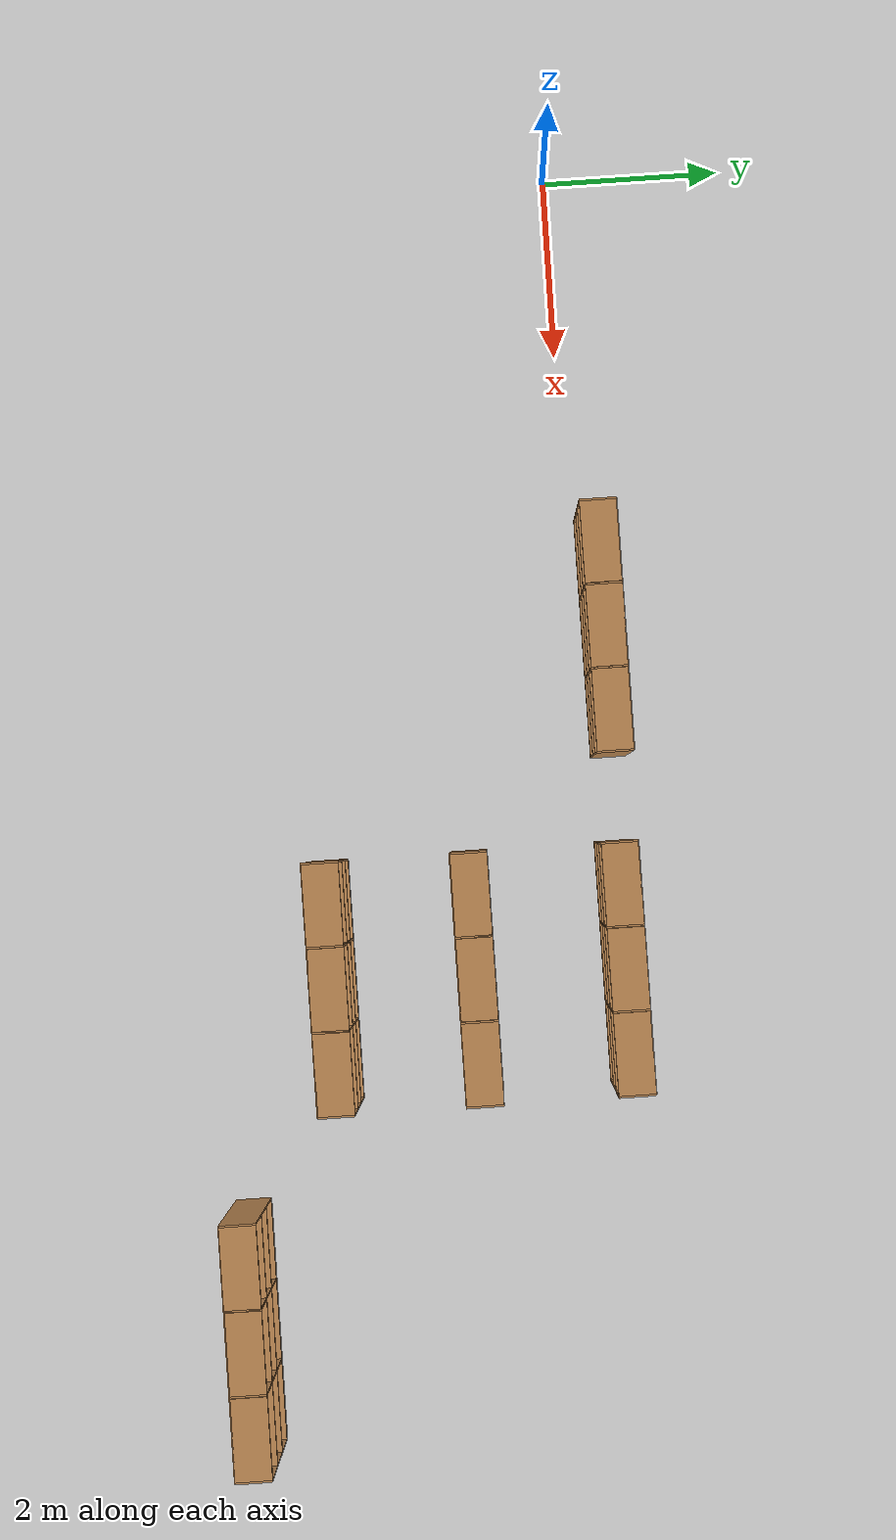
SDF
<sdf version="1.6">
 <world name="default">
  <model name="Bookself-3_0_clone_0">
   <model name="bookshelf_0">
    <static>1</static>
    <link name="link">
     <inertial><mass>1</mass></inertial>
     <collision name="back">
      <pose>0 0.005 0.6 0 -0 0</pose>
      <geometry><box><size>0.9 0.01 1.2</size></box></geometry>
     </collision>
     <visual name="visual1">
      <pose>0 0.005 0.6 0 -0 0</pose>
      <geometry><box><size>0.9 0.01 1.2</size></box></geometry>
      <material>
       <script><uri>file://media/materials/scripts/gazebo.material</uri><name>Gazebo/Wood</name></script>
      </material>
     </visual>
     <collision name="left_side">
      <pose>0.45 -0.195 0.6 0 -0 0</pose>
      <geometry><box><size>0.02 0.4 1.2</size></box></geometry>
     </collision>
     <visual name="visual2">
      <pose>0.45 -0.195 0.6 0 -0 0</pose>
      <geometry><box><size>0.02 0.4 1.2</size></box></geometry>
      <material>
       <script><uri>file://media/materials/scripts/gazebo.material</uri><name>Gazebo/Wood</name></script>
      </material>
     </visual>
     <collision name="right_side">
      <pose>-0.45 -0.195 0.6 0 -0 0</pose>
      <geometry><box><size>0.02 0.4 1.2</size></box></geometry>
     </collision>
     <visual name="visual3">
      <pose>-0.45 -0.195 0.6 0 -0 0</pose>
      <geometry><box><size>0.02 0.4 1.2</size></box></geometry>
      <material>
       <script><uri>file://media/materials/scripts/gazebo.material</uri><name>Gazebo/Wood</name></script>
      </material>
     </visual>
     <collision name="bottom">
      <pose>0 -0.195 0.03 0 -0 0</pose>
      <geometry><box><size>0.88 0.4 0.06</size></box></geometry>
     </collision>
     <visual name="visual4">
      <pose>0 -0.195 0.03 0 -0 0</pose>
      <geometry><box><size>0.88 0.4 0.06</size></box></geometry>
      <material>
       <script><uri>file://media/materials/scripts/gazebo.material</uri><name>Gazebo/Wood</name></script>
      </material>
     </visual>
     <collision name="top">
      <pose>0 -0.195 1.19 0 -0 0</pose>
      <geometry><box><size>0.88 0.4 0.02</size></box></geometry>
     </collision>
     <visual name="visual5">
      <pose>0 -0.195 1.19 0 -0 0</pose>
      <geometry><box><size>0.88 0.4 0.02</size></box></geometry>
      <material>
       <script><uri>file://media/materials/scripts/gazebo.material</uri><name>Gazebo/Wood</name></script>
      </material>
     </visual>
     <collision name="low_shelf">
      <pose>0 -0.195 0.43 0 -0 0</pose>
      <geometry><box><size>0.88 0.4 0.02</size></box></geometry>
     </collision>
     <visual name="visual6">
      <pose>0 -0.195 0.43 0 -0 0</pose>
      <geometry><box><size>0.88 0.4 0.02</size></box></geometry>
      <material>
       <script><uri>file://media/materials/scripts/gazebo.material</uri><name>Gazebo/Wood</name></script>
      </material>
     </visual>
     <collision name="high_shelf">
      <pose>0 -0.195 0.8 0 -0 0</pose>
      <geometry><box><size>0.88 0.4 0.02</size></box></geometry>
     </collision>
     <visual name="visual7">
      <pose>0 -0.195 0.8 0 -0 0</pose>
      <geometry><box><size>0.88 0.4 0.02</size></box></geometry>
      <material>
       <script><uri>file://media/materials/scripts/gazebo.material</uri><name>Gazebo/Wood</name></script>
      </material>
     </visual>
    </link>
    <pose>-0.903039 0 0 0 -0 0</pose>
   </model>
   <model name="bookshelf_1">
    <static>1</static>
    <link name="link">
     <inertial><mass>1</mass></inertial>
     <collision name="back">
      <pose>0 0.005 0.6 0 -0 0</pose>
      <geometry><box><size>0.9 0.01 1.2</size></box></geometry>
     </collision>
     <visual name="visual1">
      <pose>0 0.005 0.6 0 -0 0</pose>
      <geometry><box><size>0.9 0.01 1.2</size></box></geometry>
      <material>
       <script><uri>file://media/materials/scripts/gazebo.material</uri><name>Gazebo/Wood</name></script>
      </material>
     </visual>
     <collision name="left_side">
      <pose>0.45 -0.195 0.6 0 -0 0</pose>
      <geometry><box><size>0.02 0.4 1.2</size></box></geometry>
     </collision>
     <visual name="visual2">
      <pose>0.45 -0.195 0.6 0 -0 0</pose>
      <geometry><box><size>0.02 0.4 1.2</size></box></geometry>
      <material>
       <script><uri>file://media/materials/scripts/gazebo.material</uri><name>Gazebo/Wood</name></script>
      </material>
     </visual>
     <collision name="right_side">
      <pose>-0.45 -0.195 0.6 0 -0 0</pose>
      <geometry><box><size>0.02 0.4 1.2</size></box></geometry>
     </collision>
     <visual name="visual3">
      <pose>-0.45 -0.195 0.6 0 -0 0</pose>
      <geometry><box><size>0.02 0.4 1.2</size></box></geometry>
      <material>
       <script><uri>file://media/materials/scripts/gazebo.material</uri><name>Gazebo/Wood</name></script>
      </material>
     </visual>
     <collision name="bottom">
      <pose>0 -0.195 0.03 0 -0 0</pose>
      <geometry><box><size>0.88 0.4 0.06</size></box></geometry>
     </collision>
     <visual name="visual4">
      <pose>0 -0.195 0.03 0 -0 0</pose>
      <geometry><box><size>0.88 0.4 0.06</size></box></geometry>
      <material>
       <script><uri>file://media/materials/scripts/gazebo.material</uri><name>Gazebo/Wood</name></script>
      </material>
     </visual>
     <collision name="top">
      <pose>0 -0.195 1.19 0 -0 0</pose>
      <geometry><box><size>0.88 0.4 0.02</size></box></geometry>
     </collision>
     <visual name="visual5">
      <pose>0 -0.195 1.19 0 -0 0</pose>
      <geometry><box><size>0.88 0.4 0.02</size></box></geometry>
      <material>
       <script><uri>file://media/materials/scripts/gazebo.material</uri><name>Gazebo/Wood</name></script>
      </material>
     </visual>
     <collision name="low_shelf">
      <pose>0 -0.195 0.43 0 -0 0</pose>
      <geometry><box><size>0.88 0.4 0.02</size></box></geometry>
     </collision>
     <visual name="visual6">
      <pose>0 -0.195 0.43 0 -0 0</pose>
      <geometry><box><size>0.88 0.4 0.02</size></box></geometry>
      <material>
       <script><uri>file://media/materials/scripts/gazebo.material</uri><name>Gazebo/Wood</name></script>
      </material>
     </visual>
     <collision name="high_shelf">
      <pose>0 -0.195 0.8 0 -0 0</pose>
      <geometry><box><size>0.88 0.4 0.02</size></box></geometry>
     </collision>
     <visual name="visual7">
      <pose>0 -0.195 0.8 0 -0 0</pose>
      <geometry><box><size>0.88 0.4 0.02</size></box></geometry>
      <material>
       <script><uri>file://media/materials/scripts/gazebo.material</uri><name>Gazebo/Wood</name></script>
      </material>
     </visual>
    </link>
    <pose>0.000535 0 0 0 -0 0</pose>
   </model>
   <model name="bookshelf_1_clone">
    <static>1</static>
    <link name="link">
     <inertial><mass>1</mass></inertial>
     <collision name="back">
      <pose>0 0.005 0.6 0 -0 0</pose>
      <geometry><box><size>0.9 0.01 1.2</size></box></geometry>
     </collision>
     <visual name="visual1">
      <pose>0 0.005 0.6 0 -0 0</pose>
      <geometry><box><size>0.9 0.01 1.2</size></box></geometry>
      <material>
       <script><uri>file://media/materials/scripts/gazebo.material</uri><name>Gazebo/Wood</name></script>
      </material>
     </visual>
     <collision name="left_side">
      <pose>0.45 -0.195 0.6 0 -0 0</pose>
      <geometry><box><size>0.02 0.4 1.2</size></box></geometry>
     </collision>
     <visual name="visual2">
      <pose>0.45 -0.195 0.6 0 -0 0</pose>
      <geometry><box><size>0.02 0.4 1.2</size></box></geometry>
      <material>
       <script><uri>file://media/materials/scripts/gazebo.material</uri><name>Gazebo/Wood</name></script>
      </material>
     </visual>
     <collision name="right_side">
      <pose>-0.45 -0.195 0.6 0 -0 0</pose>
      <geometry><box><size>0.02 0.4 1.2</size></box></geometry>
     </collision>
     <visual name="visual3">
      <pose>-0.45 -0.195 0.6 0 -0 0</pose>
      <geometry><box><size>0.02 0.4 1.2</size></box></geometry>
      <material>
       <script><uri>file://media/materials/scripts/gazebo.material</uri><name>Gazebo/Wood</name></script>
      </material>
     </visual>
     <collision name="bottom">
      <pose>0 -0.195 0.03 0 -0 0</pose>
      <geometry><box><size>0.88 0.4 0.06</size></box></geometry>
     </collision>
     <visual name="visual4">
      <pose>0 -0.195 0.03 0 -0 0</pose>
      <geometry><box><size>0.88 0.4 0.06</size></box></geometry>
      <material>
       <script><uri>file://media/materials/scripts/gazebo.material</uri><name>Gazebo/Wood</name></script>
      </material>
     </visual>
     <collision name="top">
      <pose>0 -0.195 1.19 0 -0 0</pose>
      <geometry><box><size>0.88 0.4 0.02</size></box></geometry>
     </collision>
     <visual name="visual5">
      <pose>0 -0.195 1.19 0 -0 0</pose>
      <geometry><box><size>0.88 0.4 0.02</size></box></geometry>
      <material>
       <script><uri>file://media/materials/scripts/gazebo.material</uri><name>Gazebo/Wood</name></script>
      </material>
     </visual>
     <collision name="low_shelf">
      <pose>0 -0.195 0.43 0 -0 0</pose>
      <geometry><box><size>0.88 0.4 0.02</size></box></geometry>
     </collision>
     <visual name="visual6">
      <pose>0 -0.195 0.43 0 -0 0</pose>
      <geometry><box><size>0.88 0.4 0.02</size></box></geometry>
      <material>
       <script><uri>file://media/materials/scripts/gazebo.material</uri><name>Gazebo/Wood</name></script>
      </material>
     </visual>
     <collision name="high_shelf">
      <pose>0 -0.195 0.8 0 -0 0</pose>
      <geometry><box><size>0.88 0.4 0.02</size></box></geometry>
     </collision>
     <visual name="visual7">
      <pose>0 -0.195 0.8 0 -0 0</pose>
      <geometry><box><size>0.88 0.4 0.02</size></box></geometry>
      <material>
       <script><uri>file://media/materials/scripts/gazebo.material</uri><name>Gazebo/Wood</name></script>
      </material>
     </visual>
    </link>
    <pose>0.902502 0 0 0 -0 0</pose>
   </model>
   <static>1</static>
   <pose>5.26653 0.479954 0 0 -0 0</pose>
  </model>
  <model name="Bookself-3_0_clone_9">
   <model name="bookshelf_0">
    <static>1</static>
    <link name="link">
     <inertial><mass>1</mass></inertial>
     <collision name="back">
      <pose>0 0.005 0.6 0 -0 0</pose>
      <geometry><box><size>0.9 0.01 1.2</size></box></geometry>
     </collision>
     <visual name="visual1">
      <pose>0 0.005 0.6 0 -0 0</pose>
      <geometry><box><size>0.9 0.01 1.2</size></box></geometry>
      <material>
       <script><uri>file://media/materials/scripts/gazebo.material</uri><name>Gazebo/Wood</name></script>
      </material>
     </visual>
     <collision name="left_side">
      <pose>0.45 -0.195 0.6 0 -0 0</pose>
      <geometry><box><size>0.02 0.4 1.2</size></box></geometry>
     </collision>
     <visual name="visual2">
      <pose>0.45 -0.195 0.6 0 -0 0</pose>
      <geometry><box><size>0.02 0.4 1.2</size></box></geometry>
      <material>
       <script><uri>file://media/materials/scripts/gazebo.material</uri><name>Gazebo/Wood</name></script>
      </material>
     </visual>
     <collision name="right_side">
      <pose>-0.45 -0.195 0.6 0 -0 0</pose>
      <geometry><box><size>0.02 0.4 1.2</size></box></geometry>
     </collision>
     <visual name="visual3">
      <pose>-0.45 -0.195 0.6 0 -0 0</pose>
      <geometry><box><size>0.02 0.4 1.2</size></box></geometry>
      <material>
       <script><uri>file://media/materials/scripts/gazebo.material</uri><name>Gazebo/Wood</name></script>
      </material>
     </visual>
     <collision name="bottom">
      <pose>0 -0.195 0.03 0 -0 0</pose>
      <geometry><box><size>0.88 0.4 0.06</size></box></geometry>
     </collision>
     <visual name="visual4">
      <pose>0 -0.195 0.03 0 -0 0</pose>
      <geometry><box><size>0.88 0.4 0.06</size></box></geometry>
      <material>
       <script><uri>file://media/materials/scripts/gazebo.material</uri><name>Gazebo/Wood</name></script>
      </material>
     </visual>
     <collision name="top">
      <pose>0 -0.195 1.19 0 -0 0</pose>
      <geometry><box><size>0.88 0.4 0.02</size></box></geometry>
     </collision>
     <visual name="visual5">
      <pose>0 -0.195 1.19 0 -0 0</pose>
      <geometry><box><size>0.88 0.4 0.02</size></box></geometry>
      <material>
       <script><uri>file://media/materials/scripts/gazebo.material</uri><name>Gazebo/Wood</name></script>
      </material>
     </visual>
     <collision name="low_shelf">
      <pose>0 -0.195 0.43 0 -0 0</pose>
      <geometry><box><size>0.88 0.4 0.02</size></box></geometry>
     </collision>
     <visual name="visual6">
      <pose>0 -0.195 0.43 0 -0 0</pose>
      <geometry><box><size>0.88 0.4 0.02</size></box></geometry>
      <material>
       <script><uri>file://media/materials/scripts/gazebo.material</uri><name>Gazebo/Wood</name></script>
      </material>
     </visual>
     <collision name="high_shelf">
      <pose>0 -0.195 0.8 0 -0 0</pose>
      <geometry><box><size>0.88 0.4 0.02</size></box></geometry>
     </collision>
     <visual name="visual7">
      <pose>0 -0.195 0.8 0 -0 0</pose>
      <geometry><box><size>0.88 0.4 0.02</size></box></geometry>
      <material>
       <script><uri>file://media/materials/scripts/gazebo.material</uri><name>Gazebo/Wood</name></script>
      </material>
     </visual>
    </link>
    <pose>-0.903039 0 0 0 -0 0</pose>
   </model>
   <model name="bookshelf_1">
    <static>1</static>
    <link name="link">
     <inertial><mass>1</mass></inertial>
     <collision name="back">
      <pose>0 0.005 0.6 0 -0 0</pose>
      <geometry><box><size>0.9 0.01 1.2</size></box></geometry>
     </collision>
     <visual name="visual1">
      <pose>0 0.005 0.6 0 -0 0</pose>
      <geometry><box><size>0.9 0.01 1.2</size></box></geometry>
      <material>
       <script><uri>file://media/materials/scripts/gazebo.material</uri><name>Gazebo/Wood</name></script>
      </material>
     </visual>
     <collision name="left_side">
      <pose>0.45 -0.195 0.6 0 -0 0</pose>
      <geometry><box><size>0.02 0.4 1.2</size></box></geometry>
     </collision>
     <visual name="visual2">
      <pose>0.45 -0.195 0.6 0 -0 0</pose>
      <geometry><box><size>0.02 0.4 1.2</size></box></geometry>
      <material>
       <script><uri>file://media/materials/scripts/gazebo.material</uri><name>Gazebo/Wood</name></script>
      </material>
     </visual>
     <collision name="right_side">
      <pose>-0.45 -0.195 0.6 0 -0 0</pose>
      <geometry><box><size>0.02 0.4 1.2</size></box></geometry>
     </collision>
     <visual name="visual3">
      <pose>-0.45 -0.195 0.6 0 -0 0</pose>
      <geometry><box><size>0.02 0.4 1.2</size></box></geometry>
      <material>
       <script><uri>file://media/materials/scripts/gazebo.material</uri><name>Gazebo/Wood</name></script>
      </material>
     </visual>
     <collision name="bottom">
      <pose>0 -0.195 0.03 0 -0 0</pose>
      <geometry><box><size>0.88 0.4 0.06</size></box></geometry>
     </collision>
     <visual name="visual4">
      <pose>0 -0.195 0.03 0 -0 0</pose>
      <geometry><box><size>0.88 0.4 0.06</size></box></geometry>
      <material>
       <script><uri>file://media/materials/scripts/gazebo.material</uri><name>Gazebo/Wood</name></script>
      </material>
     </visual>
     <collision name="top">
      <pose>0 -0.195 1.19 0 -0 0</pose>
      <geometry><box><size>0.88 0.4 0.02</size></box></geometry>
     </collision>
     <visual name="visual5">
      <pose>0 -0.195 1.19 0 -0 0</pose>
      <geometry><box><size>0.88 0.4 0.02</size></box></geometry>
      <material>
       <script><uri>file://media/materials/scripts/gazebo.material</uri><name>Gazebo/Wood</name></script>
      </material>
     </visual>
     <collision name="low_shelf">
      <pose>0 -0.195 0.43 0 -0 0</pose>
      <geometry><box><size>0.88 0.4 0.02</size></box></geometry>
     </collision>
     <visual name="visual6">
      <pose>0 -0.195 0.43 0 -0 0</pose>
      <geometry><box><size>0.88 0.4 0.02</size></box></geometry>
      <material>
       <script><uri>file://media/materials/scripts/gazebo.material</uri><name>Gazebo/Wood</name></script>
      </material>
     </visual>
     <collision name="high_shelf">
      <pose>0 -0.195 0.8 0 -0 0</pose>
      <geometry><box><size>0.88 0.4 0.02</size></box></geometry>
     </collision>
     <visual name="visual7">
      <pose>0 -0.195 0.8 0 -0 0</pose>
      <geometry><box><size>0.88 0.4 0.02</size></box></geometry>
      <material>
       <script><uri>file://media/materials/scripts/gazebo.material</uri><name>Gazebo/Wood</name></script>
      </material>
     </visual>
    </link>
    <pose>0.000535 0 0 0 -0 0</pose>
   </model>
   <model name="bookshelf_1_clone">
    <static>1</static>
    <link name="link">
     <inertial><mass>1</mass></inertial>
     <collision name="back">
      <pose>0 0.005 0.6 0 -0 0</pose>
      <geometry><box><size>0.9 0.01 1.2</size></box></geometry>
     </collision>
     <visual name="visual1">
      <pose>0 0.005 0.6 0 -0 0</pose>
      <geometry><box><size>0.9 0.01 1.2</size></box></geometry>
      <material>
       <script><uri>file://media/materials/scripts/gazebo.material</uri><name>Gazebo/Wood</name></script>
      </material>
     </visual>
     <collision name="left_side">
      <pose>0.45 -0.195 0.6 0 -0 0</pose>
      <geometry><box><size>0.02 0.4 1.2</size></box></geometry>
     </collision>
     <visual name="visual2">
      <pose>0.45 -0.195 0.6 0 -0 0</pose>
      <geometry><box><size>0.02 0.4 1.2</size></box></geometry>
      <material>
       <script><uri>file://media/materials/scripts/gazebo.material</uri><name>Gazebo/Wood</name></script>
      </material>
     </visual>
     <collision name="right_side">
      <pose>-0.45 -0.195 0.6 0 -0 0</pose>
      <geometry><box><size>0.02 0.4 1.2</size></box></geometry>
     </collision>
     <visual name="visual3">
      <pose>-0.45 -0.195 0.6 0 -0 0</pose>
      <geometry><box><size>0.02 0.4 1.2</size></box></geometry>
      <material>
       <script><uri>file://media/materials/scripts/gazebo.material</uri><name>Gazebo/Wood</name></script>
      </material>
     </visual>
     <collision name="bottom">
      <pose>0 -0.195 0.03 0 -0 0</pose>
      <geometry><box><size>0.88 0.4 0.06</size></box></geometry>
     </collision>
     <visual name="visual4">
      <pose>0 -0.195 0.03 0 -0 0</pose>
      <geometry><box><size>0.88 0.4 0.06</size></box></geometry>
      <material>
       <script><uri>file://media/materials/scripts/gazebo.material</uri><name>Gazebo/Wood</name></script>
      </material>
     </visual>
     <collision name="top">
      <pose>0 -0.195 1.19 0 -0 0</pose>
      <geometry><box><size>0.88 0.4 0.02</size></box></geometry>
     </collision>
     <visual name="visual5">
      <pose>0 -0.195 1.19 0 -0 0</pose>
      <geometry><box><size>0.88 0.4 0.02</size></box></geometry>
      <material>
       <script><uri>file://media/materials/scripts/gazebo.material</uri><name>Gazebo/Wood</name></script>
      </material>
     </visual>
     <collision name="low_shelf">
      <pose>0 -0.195 0.43 0 -0 0</pose>
      <geometry><box><size>0.88 0.4 0.02</size></box></geometry>
     </collision>
     <visual name="visual6">
      <pose>0 -0.195 0.43 0 -0 0</pose>
      <geometry><box><size>0.88 0.4 0.02</size></box></geometry>
      <material>
       <script><uri>file://media/materials/scripts/gazebo.material</uri><name>Gazebo/Wood</name></script>
      </material>
     </visual>
     <collision name="high_shelf">
      <pose>0 -0.195 0.8 0 -0 0</pose>
      <geometry><box><size>0.88 0.4 0.02</size></box></geometry>
     </collision>
     <visual name="visual7">
      <pose>0 -0.195 0.8 0 -0 0</pose>
      <geometry><box><size>0.88 0.4 0.02</size></box></geometry>
      <material>
       <script><uri>file://media/materials/scripts/gazebo.material</uri><name>Gazebo/Wood</name></script>
      </material>
     </visual>
    </link>
    <pose>0.902502 0 0 0 -0 0</pose>
   </model>
   <static>1</static>
   <pose>8.94287 0.451987 0 0 -0 0</pose>
  </model>
  <model name="Bookself-3_0_clone_10_clone_1">
   <model name="bookshelf_0">
    <static>1</static>
    <link name="link">
     <inertial><mass>1</mass></inertial>
     <collision name="back">
      <pose>0 0.005 0.6 0 -0 0</pose>
      <geometry><box><size>0.9 0.01 1.2</size></box></geometry>
     </collision>
     <visual name="visual1">
      <pose>0 0.005 0.6 0 -0 0</pose>
      <geometry><box><size>0.9 0.01 1.2</size></box></geometry>
      <material>
       <script><uri>file://media/materials/scripts/gazebo.material</uri><name>Gazebo/Wood</name></script>
      </material>
     </visual>
     <collision name="left_side">
      <pose>0.45 -0.195 0.6 0 -0 0</pose>
      <geometry><box><size>0.02 0.4 1.2</size></box></geometry>
     </collision>
     <visual name="visual2">
      <pose>0.45 -0.195 0.6 0 -0 0</pose>
      <geometry><box><size>0.02 0.4 1.2</size></box></geometry>
      <material>
       <script><uri>file://media/materials/scripts/gazebo.material</uri><name>Gazebo/Wood</name></script>
      </material>
     </visual>
     <collision name="right_side">
      <pose>-0.45 -0.195 0.6 0 -0 0</pose>
      <geometry><box><size>0.02 0.4 1.2</size></box></geometry>
     </collision>
     <visual name="visual3">
      <pose>-0.45 -0.195 0.6 0 -0 0</pose>
      <geometry><box><size>0.02 0.4 1.2</size></box></geometry>
      <material>
       <script><uri>file://media/materials/scripts/gazebo.material</uri><name>Gazebo/Wood</name></script>
      </material>
     </visual>
     <collision name="bottom">
      <pose>0 -0.195 0.03 0 -0 0</pose>
      <geometry><box><size>0.88 0.4 0.06</size></box></geometry>
     </collision>
     <visual name="visual4">
      <pose>0 -0.195 0.03 0 -0 0</pose>
      <geometry><box><size>0.88 0.4 0.06</size></box></geometry>
      <material>
       <script><uri>file://media/materials/scripts/gazebo.material</uri><name>Gazebo/Wood</name></script>
      </material>
     </visual>
     <collision name="top">
      <pose>0 -0.195 1.19 0 -0 0</pose>
      <geometry><box><size>0.88 0.4 0.02</size></box></geometry>
     </collision>
     <visual name="visual5">
      <pose>0 -0.195 1.19 0 -0 0</pose>
      <geometry><box><size>0.88 0.4 0.02</size></box></geometry>
      <material>
       <script><uri>file://media/materials/scripts/gazebo.material</uri><name>Gazebo/Wood</name></script>
      </material>
     </visual>
     <collision name="low_shelf">
      <pose>0 -0.195 0.43 0 -0 0</pose>
      <geometry><box><size>0.88 0.4 0.02</size></box></geometry>
     </collision>
     <visual name="visual6">
      <pose>0 -0.195 0.43 0 -0 0</pose>
      <geometry><box><size>0.88 0.4 0.02</size></box></geometry>
      <material>
       <script><uri>file://media/materials/scripts/gazebo.material</uri><name>Gazebo/Wood</name></script>
      </material>
     </visual>
     <collision name="high_shelf">
      <pose>0 -0.195 0.8 0 -0 0</pose>
      <geometry><box><size>0.88 0.4 0.02</size></box></geometry>
     </collision>
     <visual name="visual7">
      <pose>0 -0.195 0.8 0 -0 0</pose>
      <geometry><box><size>0.88 0.4 0.02</size></box></geometry>
      <material>
       <script><uri>file://media/materials/scripts/gazebo.material</uri><name>Gazebo/Wood</name></script>
      </material>
     </visual>
    </link>
    <pose>-0.903039 0 0 0 -0 0</pose>
   </model>
   <model name="bookshelf_1">
    <static>1</static>
    <link name="link">
     <inertial><mass>1</mass></inertial>
     <collision name="back">
      <pose>0 0.005 0.6 0 -0 0</pose>
      <geometry><box><size>0.9 0.01 1.2</size></box></geometry>
     </collision>
     <visual name="visual1">
      <pose>0 0.005 0.6 0 -0 0</pose>
      <geometry><box><size>0.9 0.01 1.2</size></box></geometry>
      <material>
       <script><uri>file://media/materials/scripts/gazebo.material</uri><name>Gazebo/Wood</name></script>
      </material>
     </visual>
     <collision name="left_side">
      <pose>0.45 -0.195 0.6 0 -0 0</pose>
      <geometry><box><size>0.02 0.4 1.2</size></box></geometry>
     </collision>
     <visual name="visual2">
      <pose>0.45 -0.195 0.6 0 -0 0</pose>
      <geometry><box><size>0.02 0.4 1.2</size></box></geometry>
      <material>
       <script><uri>file://media/materials/scripts/gazebo.material</uri><name>Gazebo/Wood</name></script>
      </material>
     </visual>
     <collision name="right_side">
      <pose>-0.45 -0.195 0.6 0 -0 0</pose>
      <geometry><box><size>0.02 0.4 1.2</size></box></geometry>
     </collision>
     <visual name="visual3">
      <pose>-0.45 -0.195 0.6 0 -0 0</pose>
      <geometry><box><size>0.02 0.4 1.2</size></box></geometry>
      <material>
       <script><uri>file://media/materials/scripts/gazebo.material</uri><name>Gazebo/Wood</name></script>
      </material>
     </visual>
     <collision name="bottom">
      <pose>0 -0.195 0.03 0 -0 0</pose>
      <geometry><box><size>0.88 0.4 0.06</size></box></geometry>
     </collision>
     <visual name="visual4">
      <pose>0 -0.195 0.03 0 -0 0</pose>
      <geometry><box><size>0.88 0.4 0.06</size></box></geometry>
      <material>
       <script><uri>file://media/materials/scripts/gazebo.material</uri><name>Gazebo/Wood</name></script>
      </material>
     </visual>
     <collision name="top">
      <pose>0 -0.195 1.19 0 -0 0</pose>
      <geometry><box><size>0.88 0.4 0.02</size></box></geometry>
     </collision>
     <visual name="visual5">
      <pose>0 -0.195 1.19 0 -0 0</pose>
      <geometry><box><size>0.88 0.4 0.02</size></box></geometry>
      <material>
       <script><uri>file://media/materials/scripts/gazebo.material</uri><name>Gazebo/Wood</name></script>
      </material>
     </visual>
     <collision name="low_shelf">
      <pose>0 -0.195 0.43 0 -0 0</pose>
      <geometry><box><size>0.88 0.4 0.02</size></box></geometry>
     </collision>
     <visual name="visual6">
      <pose>0 -0.195 0.43 0 -0 0</pose>
      <geometry><box><size>0.88 0.4 0.02</size></box></geometry>
      <material>
       <script><uri>file://media/materials/scripts/gazebo.material</uri><name>Gazebo/Wood</name></script>
      </material>
     </visual>
     <collision name="high_shelf">
      <pose>0 -0.195 0.8 0 -0 0</pose>
      <geometry><box><size>0.88 0.4 0.02</size></box></geometry>
     </collision>
     <visual name="visual7">
      <pose>0 -0.195 0.8 0 -0 0</pose>
      <geometry><box><size>0.88 0.4 0.02</size></box></geometry>
      <material>
       <script><uri>file://media/materials/scripts/gazebo.material</uri><name>Gazebo/Wood</name></script>
      </material>
     </visual>
    </link>
    <pose>0.000535 0 0 0 -0 0</pose>
   </model>
   <model name="bookshelf_1_clone">
    <static>1</static>
    <link name="link">
     <inertial><mass>1</mass></inertial>
     <collision name="back">
      <pose>0 0.005 0.6 0 -0 0</pose>
      <geometry><box><size>0.9 0.01 1.2</size></box></geometry>
     </collision>
     <visual name="visual1">
      <pose>0 0.005 0.6 0 -0 0</pose>
      <geometry><box><size>0.9 0.01 1.2</size></box></geometry>
      <material>
       <script><uri>file://media/materials/scripts/gazebo.material</uri><name>Gazebo/Wood</name></script>
      </material>
     </visual>
     <collision name="left_side">
      <pose>0.45 -0.195 0.6 0 -0 0</pose>
      <geometry><box><size>0.02 0.4 1.2</size></box></geometry>
     </collision>
     <visual name="visual2">
      <pose>0.45 -0.195 0.6 0 -0 0</pose>
      <geometry><box><size>0.02 0.4 1.2</size></box></geometry>
      <material>
       <script><uri>file://media/materials/scripts/gazebo.material</uri><name>Gazebo/Wood</name></script>
      </material>
     </visual>
     <collision name="right_side">
      <pose>-0.45 -0.195 0.6 0 -0 0</pose>
      <geometry><box><size>0.02 0.4 1.2</size></box></geometry>
     </collision>
     <visual name="visual3">
      <pose>-0.45 -0.195 0.6 0 -0 0</pose>
      <geometry><box><size>0.02 0.4 1.2</size></box></geometry>
      <material>
       <script><uri>file://media/materials/scripts/gazebo.material</uri><name>Gazebo/Wood</name></script>
      </material>
     </visual>
     <collision name="bottom">
      <pose>0 -0.195 0.03 0 -0 0</pose>
      <geometry><box><size>0.88 0.4 0.06</size></box></geometry>
     </collision>
     <visual name="visual4">
      <pose>0 -0.195 0.03 0 -0 0</pose>
      <geometry><box><size>0.88 0.4 0.06</size></box></geometry>
      <material>
       <script><uri>file://media/materials/scripts/gazebo.material</uri><name>Gazebo/Wood</name></script>
      </material>
     </visual>
     <collision name="top">
      <pose>0 -0.195 1.19 0 -0 0</pose>
      <geometry><box><size>0.88 0.4 0.02</size></box></geometry>
     </collision>
     <visual name="visual5">
      <pose>0 -0.195 1.19 0 -0 0</pose>
      <geometry><box><size>0.88 0.4 0.02</size></box></geometry>
      <material>
       <script><uri>file://media/materials/scripts/gazebo.material</uri><name>Gazebo/Wood</name></script>
      </material>
     </visual>
     <collision name="low_shelf">
      <pose>0 -0.195 0.43 0 -0 0</pose>
      <geometry><box><size>0.88 0.4 0.02</size></box></geometry>
     </collision>
     <visual name="visual6">
      <pose>0 -0.195 0.43 0 -0 0</pose>
      <geometry><box><size>0.88 0.4 0.02</size></box></geometry>
      <material>
       <script><uri>file://media/materials/scripts/gazebo.material</uri><name>Gazebo/Wood</name></script>
      </material>
     </visual>
     <collision name="high_shelf">
      <pose>0 -0.195 0.8 0 -0 0</pose>
      <geometry><box><size>0.88 0.4 0.02</size></box></geometry>
     </collision>
     <visual name="visual7">
      <pose>0 -0.195 0.8 0 -0 0</pose>
      <geometry><box><size>0.88 0.4 0.02</size></box></geometry>
      <material>
       <script><uri>file://media/materials/scripts/gazebo.material</uri><name>Gazebo/Wood</name></script>
      </material>
     </visual>
    </link>
    <pose>0.902502 0 0 0 -0 0</pose>
   </model>
   <static>1</static>
   <pose>8.94233 -1.559 0 0 -0 3.14159</pose>
  </model>
  <model name="Bookself-3_0_clone_10_clone_2">
   <model name="bookshelf_0">
    <static>1</static>
    <link name="link">
     <inertial><mass>1</mass></inertial>
     <collision name="back">
      <pose>0 0.005 0.6 0 -0 0</pose>
      <geometry><box><size>0.9 0.01 1.2</size></box></geometry>
     </collision>
     <visual name="visual1">
      <pose>0 0.005 0.6 0 -0 0</pose>
      <geometry><box><size>0.9 0.01 1.2</size></box></geometry>
      <material>
       <script><uri>file://media/materials/scripts/gazebo.material</uri><name>Gazebo/Wood</name></script>
      </material>
     </visual>
     <collision name="left_side">
      <pose>0.45 -0.195 0.6 0 -0 0</pose>
      <geometry><box><size>0.02 0.4 1.2</size></box></geometry>
     </collision>
     <visual name="visual2">
      <pose>0.45 -0.195 0.6 0 -0 0</pose>
      <geometry><box><size>0.02 0.4 1.2</size></box></geometry>
      <material>
       <script><uri>file://media/materials/scripts/gazebo.material</uri><name>Gazebo/Wood</name></script>
      </material>
     </visual>
     <collision name="right_side">
      <pose>-0.45 -0.195 0.6 0 -0 0</pose>
      <geometry><box><size>0.02 0.4 1.2</size></box></geometry>
     </collision>
     <visual name="visual3">
      <pose>-0.45 -0.195 0.6 0 -0 0</pose>
      <geometry><box><size>0.02 0.4 1.2</size></box></geometry>
      <material>
       <script><uri>file://media/materials/scripts/gazebo.material</uri><name>Gazebo/Wood</name></script>
      </material>
     </visual>
     <collision name="bottom">
      <pose>0 -0.195 0.03 0 -0 0</pose>
      <geometry><box><size>0.88 0.4 0.06</size></box></geometry>
     </collision>
     <visual name="visual4">
      <pose>0 -0.195 0.03 0 -0 0</pose>
      <geometry><box><size>0.88 0.4 0.06</size></box></geometry>
      <material>
       <script><uri>file://media/materials/scripts/gazebo.material</uri><name>Gazebo/Wood</name></script>
      </material>
     </visual>
     <collision name="top">
      <pose>0 -0.195 1.19 0 -0 0</pose>
      <geometry><box><size>0.88 0.4 0.02</size></box></geometry>
     </collision>
     <visual name="visual5">
      <pose>0 -0.195 1.19 0 -0 0</pose>
      <geometry><box><size>0.88 0.4 0.02</size></box></geometry>
      <material>
       <script><uri>file://media/materials/scripts/gazebo.material</uri><name>Gazebo/Wood</name></script>
      </material>
     </visual>
     <collision name="low_shelf">
      <pose>0 -0.195 0.43 0 -0 0</pose>
      <geometry><box><size>0.88 0.4 0.02</size></box></geometry>
     </collision>
     <visual name="visual6">
      <pose>0 -0.195 0.43 0 -0 0</pose>
      <geometry><box><size>0.88 0.4 0.02</size></box></geometry>
      <material>
       <script><uri>file://media/materials/scripts/gazebo.material</uri><name>Gazebo/Wood</name></script>
      </material>
     </visual>
     <collision name="high_shelf">
      <pose>0 -0.195 0.8 0 -0 0</pose>
      <geometry><box><size>0.88 0.4 0.02</size></box></geometry>
     </collision>
     <visual name="visual7">
      <pose>0 -0.195 0.8 0 -0 0</pose>
      <geometry><box><size>0.88 0.4 0.02</size></box></geometry>
      <material>
       <script><uri>file://media/materials/scripts/gazebo.material</uri><name>Gazebo/Wood</name></script>
      </material>
     </visual>
    </link>
    <pose>-0.903039 0 0 0 -0 0</pose>
   </model>
   <model name="bookshelf_1">
    <static>1</static>
    <link name="link">
     <inertial><mass>1</mass></inertial>
     <collision name="back">
      <pose>0 0.005 0.6 0 -0 0</pose>
      <geometry><box><size>0.9 0.01 1.2</size></box></geometry>
     </collision>
     <visual name="visual1">
      <pose>0 0.005 0.6 0 -0 0</pose>
      <geometry><box><size>0.9 0.01 1.2</size></box></geometry>
      <material>
       <script><uri>file://media/materials/scripts/gazebo.material</uri><name>Gazebo/Wood</name></script>
      </material>
     </visual>
     <collision name="left_side">
      <pose>0.45 -0.195 0.6 0 -0 0</pose>
      <geometry><box><size>0.02 0.4 1.2</size></box></geometry>
     </collision>
     <visual name="visual2">
      <pose>0.45 -0.195 0.6 0 -0 0</pose>
      <geometry><box><size>0.02 0.4 1.2</size></box></geometry>
      <material>
       <script><uri>file://media/materials/scripts/gazebo.material</uri><name>Gazebo/Wood</name></script>
      </material>
     </visual>
     <collision name="right_side">
      <pose>-0.45 -0.195 0.6 0 -0 0</pose>
      <geometry><box><size>0.02 0.4 1.2</size></box></geometry>
     </collision>
     <visual name="visual3">
      <pose>-0.45 -0.195 0.6 0 -0 0</pose>
      <geometry><box><size>0.02 0.4 1.2</size></box></geometry>
      <material>
       <script><uri>file://media/materials/scripts/gazebo.material</uri><name>Gazebo/Wood</name></script>
      </material>
     </visual>
     <collision name="bottom">
      <pose>0 -0.195 0.03 0 -0 0</pose>
      <geometry><box><size>0.88 0.4 0.06</size></box></geometry>
     </collision>
     <visual name="visual4">
      <pose>0 -0.195 0.03 0 -0 0</pose>
      <geometry><box><size>0.88 0.4 0.06</size></box></geometry>
      <material>
       <script><uri>file://media/materials/scripts/gazebo.material</uri><name>Gazebo/Wood</name></script>
      </material>
     </visual>
     <collision name="top">
      <pose>0 -0.195 1.19 0 -0 0</pose>
      <geometry><box><size>0.88 0.4 0.02</size></box></geometry>
     </collision>
     <visual name="visual5">
      <pose>0 -0.195 1.19 0 -0 0</pose>
      <geometry><box><size>0.88 0.4 0.02</size></box></geometry>
      <material>
       <script><uri>file://media/materials/scripts/gazebo.material</uri><name>Gazebo/Wood</name></script>
      </material>
     </visual>
     <collision name="low_shelf">
      <pose>0 -0.195 0.43 0 -0 0</pose>
      <geometry><box><size>0.88 0.4 0.02</size></box></geometry>
     </collision>
     <visual name="visual6">
      <pose>0 -0.195 0.43 0 -0 0</pose>
      <geometry><box><size>0.88 0.4 0.02</size></box></geometry>
      <material>
       <script><uri>file://media/materials/scripts/gazebo.material</uri><name>Gazebo/Wood</name></script>
      </material>
     </visual>
     <collision name="high_shelf">
      <pose>0 -0.195 0.8 0 -0 0</pose>
      <geometry><box><size>0.88 0.4 0.02</size></box></geometry>
     </collision>
     <visual name="visual7">
      <pose>0 -0.195 0.8 0 -0 0</pose>
      <geometry><box><size>0.88 0.4 0.02</size></box></geometry>
      <material>
       <script><uri>file://media/materials/scripts/gazebo.material</uri><name>Gazebo/Wood</name></script>
      </material>
     </visual>
    </link>
    <pose>0.000535 0 0 0 -0 0</pose>
   </model>
   <model name="bookshelf_1_clone">
    <static>1</static>
    <link name="link">
     <inertial><mass>1</mass></inertial>
     <collision name="back">
      <pose>0 0.005 0.6 0 -0 0</pose>
      <geometry><box><size>0.9 0.01 1.2</size></box></geometry>
     </collision>
     <visual name="visual1">
      <pose>0 0.005 0.6 0 -0 0</pose>
      <geometry><box><size>0.9 0.01 1.2</size></box></geometry>
      <material>
       <script><uri>file://media/materials/scripts/gazebo.material</uri><name>Gazebo/Wood</name></script>
      </material>
     </visual>
     <collision name="left_side">
      <pose>0.45 -0.195 0.6 0 -0 0</pose>
      <geometry><box><size>0.02 0.4 1.2</size></box></geometry>
     </collision>
     <visual name="visual2">
      <pose>0.45 -0.195 0.6 0 -0 0</pose>
      <geometry><box><size>0.02 0.4 1.2</size></box></geometry>
      <material>
       <script><uri>file://media/materials/scripts/gazebo.material</uri><name>Gazebo/Wood</name></script>
      </material>
     </visual>
     <collision name="right_side">
      <pose>-0.45 -0.195 0.6 0 -0 0</pose>
      <geometry><box><size>0.02 0.4 1.2</size></box></geometry>
     </collision>
     <visual name="visual3">
      <pose>-0.45 -0.195 0.6 0 -0 0</pose>
      <geometry><box><size>0.02 0.4 1.2</size></box></geometry>
      <material>
       <script><uri>file://media/materials/scripts/gazebo.material</uri><name>Gazebo/Wood</name></script>
      </material>
     </visual>
     <collision name="bottom">
      <pose>0 -0.195 0.03 0 -0 0</pose>
      <geometry><box><size>0.88 0.4 0.06</size></box></geometry>
     </collision>
     <visual name="visual4">
      <pose>0 -0.195 0.03 0 -0 0</pose>
      <geometry><box><size>0.88 0.4 0.06</size></box></geometry>
      <material>
       <script><uri>file://media/materials/scripts/gazebo.material</uri><name>Gazebo/Wood</name></script>
      </material>
     </visual>
     <collision name="top">
      <pose>0 -0.195 1.19 0 -0 0</pose>
      <geometry><box><size>0.88 0.4 0.02</size></box></geometry>
     </collision>
     <visual name="visual5">
      <pose>0 -0.195 1.19 0 -0 0</pose>
      <geometry><box><size>0.88 0.4 0.02</size></box></geometry>
      <material>
       <script><uri>file://media/materials/scripts/gazebo.material</uri><name>Gazebo/Wood</name></script>
      </material>
     </visual>
     <collision name="low_shelf">
      <pose>0 -0.195 0.43 0 -0 0</pose>
      <geometry><box><size>0.88 0.4 0.02</size></box></geometry>
     </collision>
     <visual name="visual6">
      <pose>0 -0.195 0.43 0 -0 0</pose>
      <geometry><box><size>0.88 0.4 0.02</size></box></geometry>
      <material>
       <script><uri>file://media/materials/scripts/gazebo.material</uri><name>Gazebo/Wood</name></script>
      </material>
     </visual>
     <collision name="high_shelf">
      <pose>0 -0.195 0.8 0 -0 0</pose>
      <geometry><box><size>0.88 0.4 0.02</size></box></geometry>
     </collision>
     <visual name="visual7">
      <pose>0 -0.195 0.8 0 -0 0</pose>
      <geometry><box><size>0.88 0.4 0.02</size></box></geometry>
      <material>
       <script><uri>file://media/materials/scripts/gazebo.material</uri><name>Gazebo/Wood</name></script>
      </material>
     </visual>
    </link>
    <pose>0.902502 0 0 0 -0 0</pose>
   </model>
   <static>1</static>
   <pose>8.94233 -3.14528 0 0 -0 3.14159</pose>
  </model>
  <model name="Bookself-3_0_clone_10_clone_9">
   <model name="bookshelf_0">
    <static>1</static>
    <link name="link">
     <inertial><mass>1</mass></inertial>
     <collision name="back">
      <pose>0 0.005 0.6 0 -0 0</pose>
      <geometry><box><size>0.9 0.01 1.2</size></box></geometry>
     </collision>
     <visual name="visual1">
      <pose>0 0.005 0.6 0 -0 0</pose>
      <geometry><box><size>0.9 0.01 1.2</size></box></geometry>
      <material>
       <script><uri>file://media/materials/scripts/gazebo.material</uri><name>Gazebo/Wood</name></script>
      </material>
     </visual>
     <collision name="left_side">
      <pose>0.45 -0.195 0.6 0 -0 0</pose>
      <geometry><box><size>0.02 0.4 1.2</size></box></geometry>
     </collision>
     <visual name="visual2">
      <pose>0.45 -0.195 0.6 0 -0 0</pose>
      <geometry><box><size>0.02 0.4 1.2</size></box></geometry>
      <material>
       <script><uri>file://media/materials/scripts/gazebo.material</uri><name>Gazebo/Wood</name></script>
      </material>
     </visual>
     <collision name="right_side">
      <pose>-0.45 -0.195 0.6 0 -0 0</pose>
      <geometry><box><size>0.02 0.4 1.2</size></box></geometry>
     </collision>
     <visual name="visual3">
      <pose>-0.45 -0.195 0.6 0 -0 0</pose>
      <geometry><box><size>0.02 0.4 1.2</size></box></geometry>
      <material>
       <script><uri>file://media/materials/scripts/gazebo.material</uri><name>Gazebo/Wood</name></script>
      </material>
     </visual>
     <collision name="bottom">
      <pose>0 -0.195 0.03 0 -0 0</pose>
      <geometry><box><size>0.88 0.4 0.06</size></box></geometry>
     </collision>
     <visual name="visual4">
      <pose>0 -0.195 0.03 0 -0 0</pose>
      <geometry><box><size>0.88 0.4 0.06</size></box></geometry>
      <material>
       <script><uri>file://media/materials/scripts/gazebo.material</uri><name>Gazebo/Wood</name></script>
      </material>
     </visual>
     <collision name="top">
      <pose>0 -0.195 1.19 0 -0 0</pose>
      <geometry><box><size>0.88 0.4 0.02</size></box></geometry>
     </collision>
     <visual name="visual5">
      <pose>0 -0.195 1.19 0 -0 0</pose>
      <geometry><box><size>0.88 0.4 0.02</size></box></geometry>
      <material>
       <script><uri>file://media/materials/scripts/gazebo.material</uri><name>Gazebo/Wood</name></script>
      </material>
     </visual>
     <collision name="low_shelf">
      <pose>0 -0.195 0.43 0 -0 0</pose>
      <geometry><box><size>0.88 0.4 0.02</size></box></geometry>
     </collision>
     <visual name="visual6">
      <pose>0 -0.195 0.43 0 -0 0</pose>
      <geometry><box><size>0.88 0.4 0.02</size></box></geometry>
      <material>
       <script><uri>file://media/materials/scripts/gazebo.material</uri><name>Gazebo/Wood</name></script>
      </material>
     </visual>
     <collision name="high_shelf">
      <pose>0 -0.195 0.8 0 -0 0</pose>
      <geometry><box><size>0.88 0.4 0.02</size></box></geometry>
     </collision>
     <visual name="visual7">
      <pose>0 -0.195 0.8 0 -0 0</pose>
      <geometry><box><size>0.88 0.4 0.02</size></box></geometry>
      <material>
       <script><uri>file://media/materials/scripts/gazebo.material</uri><name>Gazebo/Wood</name></script>
      </material>
     </visual>
    </link>
    <pose>-0.903039 0 0 0 -0 0</pose>
   </model>
   <model name="bookshelf_1">
    <static>1</static>
    <link name="link">
     <inertial><mass>1</mass></inertial>
     <collision name="back">
      <pose>0 0.005 0.6 0 -0 0</pose>
      <geometry><box><size>0.9 0.01 1.2</size></box></geometry>
     </collision>
     <visual name="visual1">
      <pose>0 0.005 0.6 0 -0 0</pose>
      <geometry><box><size>0.9 0.01 1.2</size></box></geometry>
      <material>
       <script><uri>file://media/materials/scripts/gazebo.material</uri><name>Gazebo/Wood</name></script>
      </material>
     </visual>
     <collision name="left_side">
      <pose>0.45 -0.195 0.6 0 -0 0</pose>
      <geometry><box><size>0.02 0.4 1.2</size></box></geometry>
     </collision>
     <visual name="visual2">
      <pose>0.45 -0.195 0.6 0 -0 0</pose>
      <geometry><box><size>0.02 0.4 1.2</size></box></geometry>
      <material>
       <script><uri>file://media/materials/scripts/gazebo.material</uri><name>Gazebo/Wood</name></script>
      </material>
     </visual>
     <collision name="right_side">
      <pose>-0.45 -0.195 0.6 0 -0 0</pose>
      <geometry><box><size>0.02 0.4 1.2</size></box></geometry>
     </collision>
     <visual name="visual3">
      <pose>-0.45 -0.195 0.6 0 -0 0</pose>
      <geometry><box><size>0.02 0.4 1.2</size></box></geometry>
      <material>
       <script><uri>file://media/materials/scripts/gazebo.material</uri><name>Gazebo/Wood</name></script>
      </material>
     </visual>
     <collision name="bottom">
      <pose>0 -0.195 0.03 0 -0 0</pose>
      <geometry><box><size>0.88 0.4 0.06</size></box></geometry>
     </collision>
     <visual name="visual4">
      <pose>0 -0.195 0.03 0 -0 0</pose>
      <geometry><box><size>0.88 0.4 0.06</size></box></geometry>
      <material>
       <script><uri>file://media/materials/scripts/gazebo.material</uri><name>Gazebo/Wood</name></script>
      </material>
     </visual>
     <collision name="top">
      <pose>0 -0.195 1.19 0 -0 0</pose>
      <geometry><box><size>0.88 0.4 0.02</size></box></geometry>
     </collision>
     <visual name="visual5">
      <pose>0 -0.195 1.19 0 -0 0</pose>
      <geometry><box><size>0.88 0.4 0.02</size></box></geometry>
      <material>
       <script><uri>file://media/materials/scripts/gazebo.material</uri><name>Gazebo/Wood</name></script>
      </material>
     </visual>
     <collision name="low_shelf">
      <pose>0 -0.195 0.43 0 -0 0</pose>
      <geometry><box><size>0.88 0.4 0.02</size></box></geometry>
     </collision>
     <visual name="visual6">
      <pose>0 -0.195 0.43 0 -0 0</pose>
      <geometry><box><size>0.88 0.4 0.02</size></box></geometry>
      <material>
       <script><uri>file://media/materials/scripts/gazebo.material</uri><name>Gazebo/Wood</name></script>
      </material>
     </visual>
     <collision name="high_shelf">
      <pose>0 -0.195 0.8 0 -0 0</pose>
      <geometry><box><size>0.88 0.4 0.02</size></box></geometry>
     </collision>
     <visual name="visual7">
      <pose>0 -0.195 0.8 0 -0 0</pose>
      <geometry><box><size>0.88 0.4 0.02</size></box></geometry>
      <material>
       <script><uri>file://media/materials/scripts/gazebo.material</uri><name>Gazebo/Wood</name></script>
      </material>
     </visual>
    </link>
    <pose>0.000535 0 0 0 -0 0</pose>
   </model>
   <model name="bookshelf_1_clone">
    <static>1</static>
    <link name="link">
     <inertial><mass>1</mass></inertial>
     <collision name="back">
      <pose>0 0.005 0.6 0 -0 0</pose>
      <geometry><box><size>0.9 0.01 1.2</size></box></geometry>
     </collision>
     <visual name="visual1">
      <pose>0 0.005 0.6 0 -0 0</pose>
      <geometry><box><size>0.9 0.01 1.2</size></box></geometry>
      <material>
       <script><uri>file://media/materials/scripts/gazebo.material</uri><name>Gazebo/Wood</name></script>
      </material>
     </visual>
     <collision name="left_side">
      <pose>0.45 -0.195 0.6 0 -0 0</pose>
      <geometry><box><size>0.02 0.4 1.2</size></box></geometry>
     </collision>
     <visual name="visual2">
      <pose>0.45 -0.195 0.6 0 -0 0</pose>
      <geometry><box><size>0.02 0.4 1.2</size></box></geometry>
      <material>
       <script><uri>file://media/materials/scripts/gazebo.material</uri><name>Gazebo/Wood</name></script>
      </material>
     </visual>
     <collision name="right_side">
      <pose>-0.45 -0.195 0.6 0 -0 0</pose>
      <geometry><box><size>0.02 0.4 1.2</size></box></geometry>
     </collision>
     <visual name="visual3">
      <pose>-0.45 -0.195 0.6 0 -0 0</pose>
      <geometry><box><size>0.02 0.4 1.2</size></box></geometry>
      <material>
       <script><uri>file://media/materials/scripts/gazebo.material</uri><name>Gazebo/Wood</name></script>
      </material>
     </visual>
     <collision name="bottom">
      <pose>0 -0.195 0.03 0 -0 0</pose>
      <geometry><box><size>0.88 0.4 0.06</size></box></geometry>
     </collision>
     <visual name="visual4">
      <pose>0 -0.195 0.03 0 -0 0</pose>
      <geometry><box><size>0.88 0.4 0.06</size></box></geometry>
      <material>
       <script><uri>file://media/materials/scripts/gazebo.material</uri><name>Gazebo/Wood</name></script>
      </material>
     </visual>
     <collision name="top">
      <pose>0 -0.195 1.19 0 -0 0</pose>
      <geometry><box><size>0.88 0.4 0.02</size></box></geometry>
     </collision>
     <visual name="visual5">
      <pose>0 -0.195 1.19 0 -0 0</pose>
      <geometry><box><size>0.88 0.4 0.02</size></box></geometry>
      <material>
       <script><uri>file://media/materials/scripts/gazebo.material</uri><name>Gazebo/Wood</name></script>
      </material>
     </visual>
     <collision name="low_shelf">
      <pose>0 -0.195 0.43 0 -0 0</pose>
      <geometry><box><size>0.88 0.4 0.02</size></box></geometry>
     </collision>
     <visual name="visual6">
      <pose>0 -0.195 0.43 0 -0 0</pose>
      <geometry><box><size>0.88 0.4 0.02</size></box></geometry>
      <material>
       <script><uri>file://media/materials/scripts/gazebo.material</uri><name>Gazebo/Wood</name></script>
      </material>
     </visual>
     <collision name="high_shelf">
      <pose>0 -0.195 0.8 0 -0 0</pose>
      <geometry><box><size>0.88 0.4 0.02</size></box></geometry>
     </collision>
     <visual name="visual7">
      <pose>0 -0.195 0.8 0 -0 0</pose>
      <geometry><box><size>0.88 0.4 0.02</size></box></geometry>
      <material>
       <script><uri>file://media/materials/scripts/gazebo.material</uri><name>Gazebo/Wood</name></script>
      </material>
     </visual>
    </link>
    <pose>0.902502 0 0 0 -0 0</pose>
   </model>
   <static>1</static>
   <pose>12.7163 -4.27318 0 0 -0 3.14159</pose>
  </model>
  <model name="ground_plane">
   <static>1</static>
   <link name="link">
    <collision name="collision">
     <geometry><plane><normal>0 0 1</normal><size>100 100</size></plane></geometry>
     <surface><friction><ode><mu>100</mu><mu2>50</mu2></ode></friction></surface>
    </collision>
    <visual name="visual">
     <cast_shadows>0</cast_shadows>
     <geometry><plane><normal>0 0 1</normal><size>100 100</size></plane></geometry>
     <material>
      <script><uri>file://media/materials/scripts/gazebo.material</uri><name>Gazebo/Grey</name></script>
     </material>
    </visual>
   </link>
   <pose>1.79627 -1.63715 0 0 -0 0</pose>
  </model>
 </world>
</sdf>
